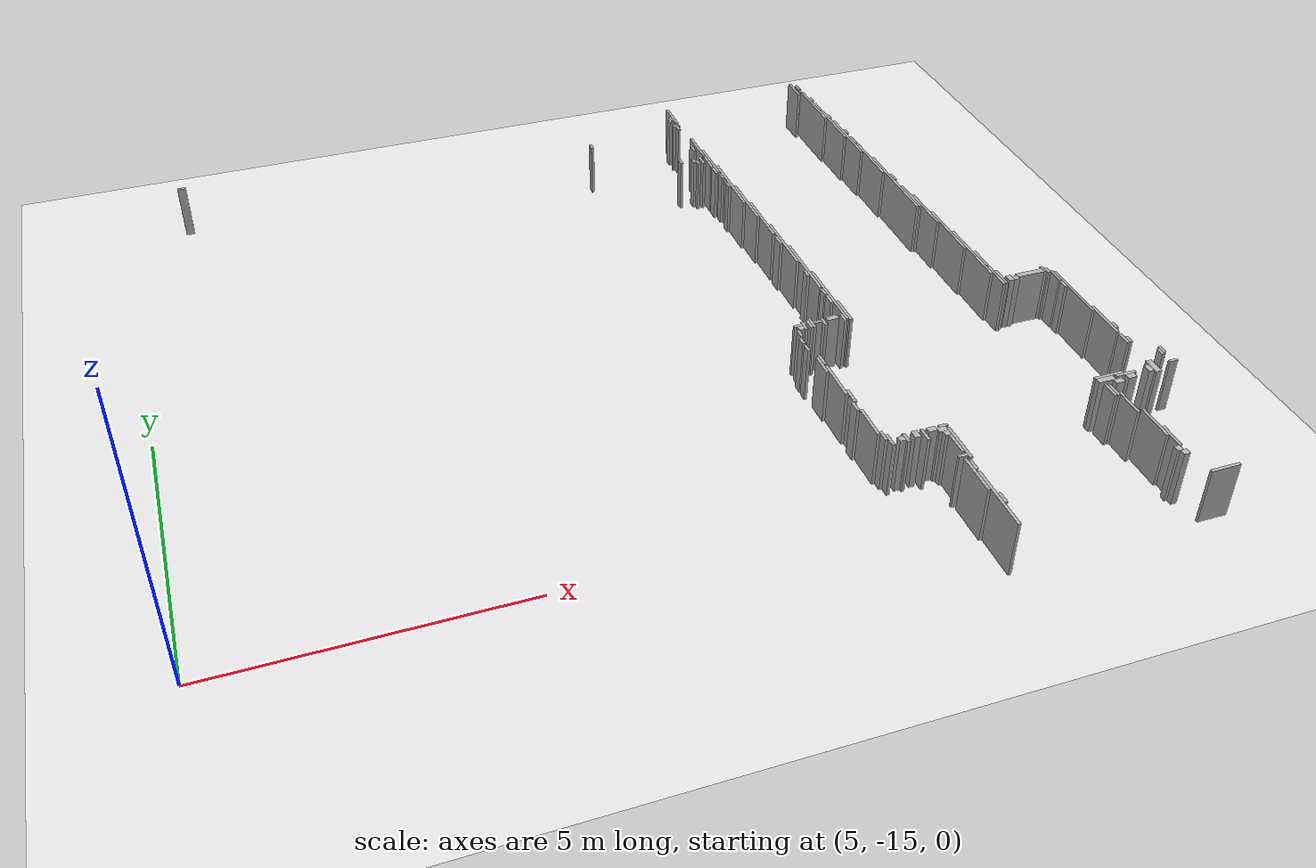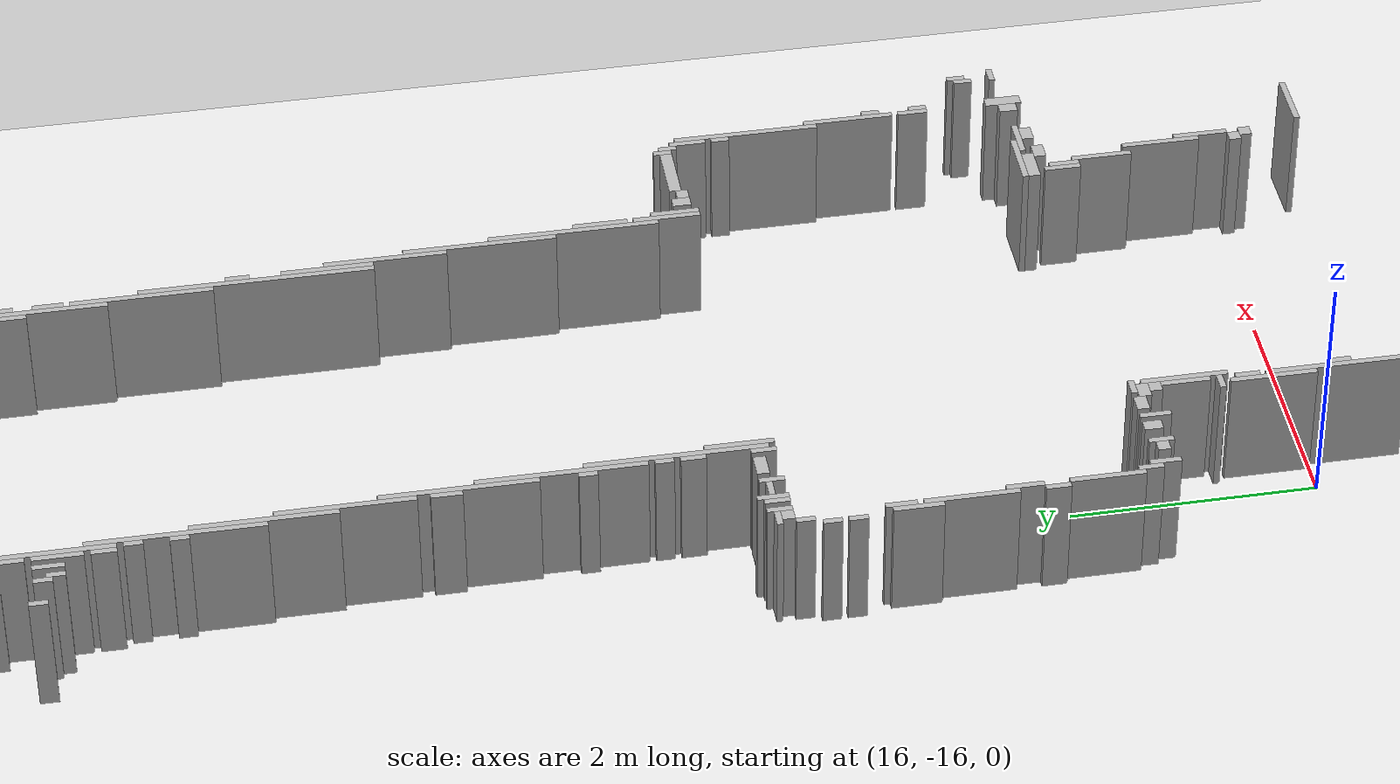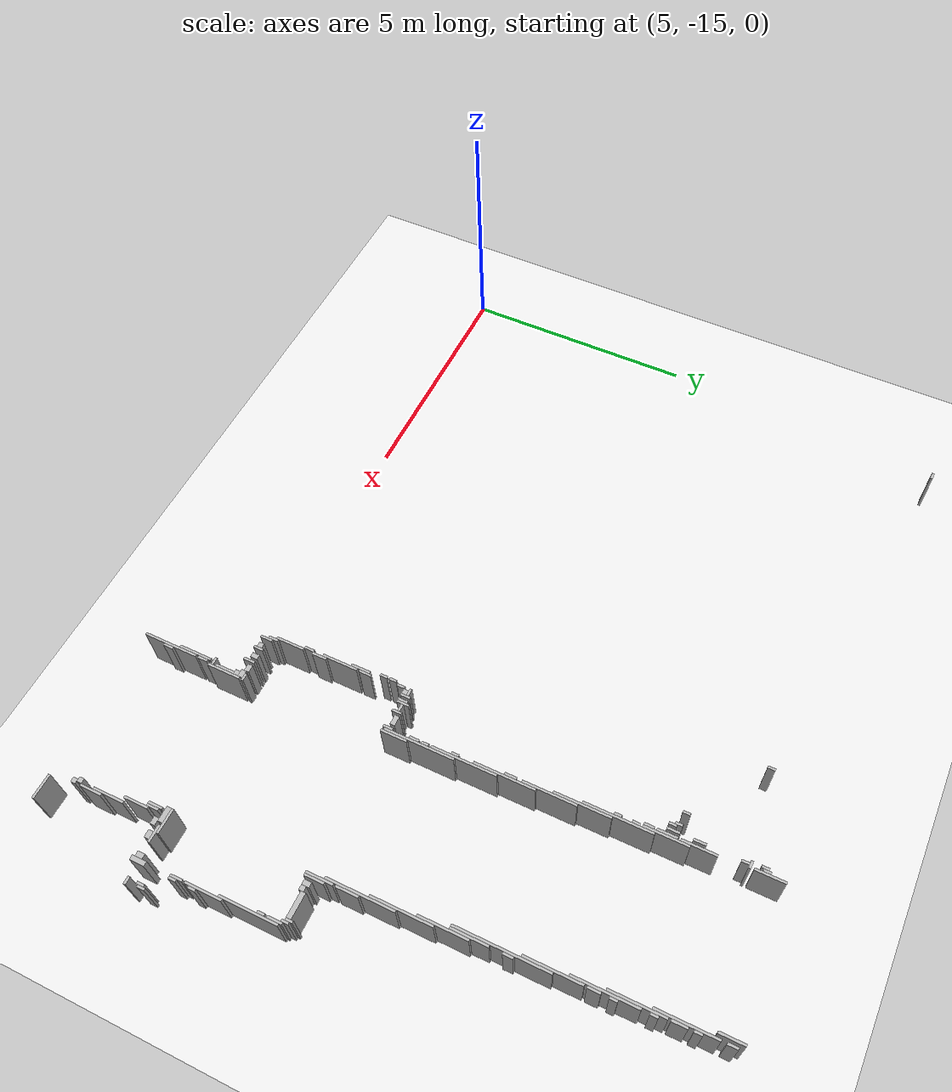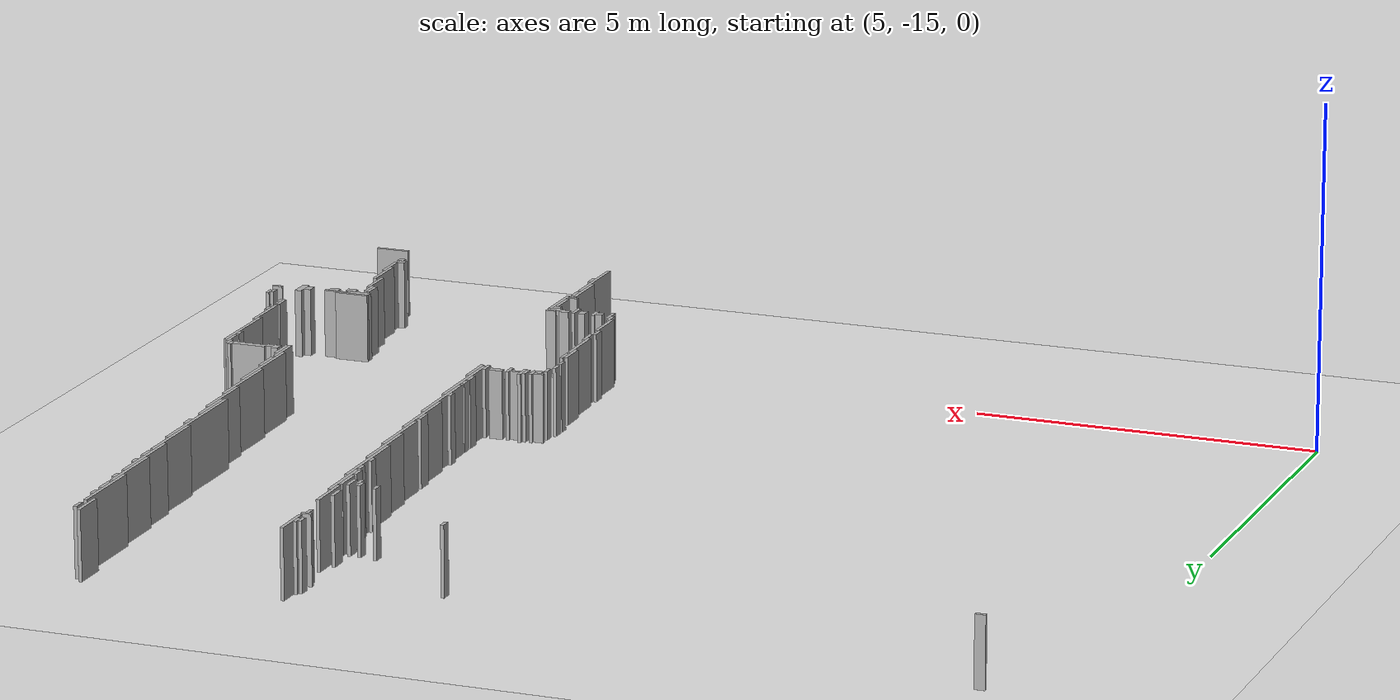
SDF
<sdf version="1.8">
 <world name="building">
  <model name="ground_plane">
   <static>true</static>
   <link name="link">
    <collision name="c"><geometry><plane><normal>0 0 1</normal><size>200 200</size></plane></geometry></collision>
    <visual name="v">
     <geometry><plane><normal>0 0 1</normal><size>200 200</size></plane></geometry>
     <material><ambient>0.9 0.9 0.9 1</ambient><diffuse>0.9 0.9 0.9 1</diffuse></material>
    </visual>
   </link>
  </model>
  <model name="walls">
   <static>true</static>
   <link name="wall_459">
    <pose>18.525 -3.900 0.500 0 0 0</pose>
    <collision name="c"><geometry><box><size>0.050 0.500 1.000</size></box></geometry></collision>
    <visual name="v">
     <geometry><box><size>0.050 0.500 1.000</size></box></geometry>
     <material><ambient>0.6 0.6 0.6 1</ambient><diffuse>0.7 0.7 0.7 1</diffuse></material>
    </visual>
   </link>
   <link name="wall_460">
    <pose>18.625 -3.850 0.500 0 0 0</pose>
    <collision name="c"><geometry><box><size>0.050 0.200 1.000</size></box></geometry></collision>
    <visual name="v">
     <geometry><box><size>0.050 0.200 1.000</size></box></geometry>
     <material><ambient>0.6 0.6 0.6 1</ambient><diffuse>0.7 0.7 0.7 1</diffuse></material>
    </visual>
   </link>
   <link name="wall_461">
    <pose>6.125 -3.875 0.500 0 0 0</pose>
    <collision name="c"><geometry><box><size>0.150 0.050 1.000</size></box></geometry></collision>
    <visual name="v">
     <geometry><box><size>0.150 0.050 1.000</size></box></geometry>
     <material><ambient>0.6 0.6 0.6 1</ambient><diffuse>0.7 0.7 0.7 1</diffuse></material>
    </visual>
   </link>
   <link name="wall_462">
    <pose>15.725 -4.200 0.500 0 0 0</pose>
    <collision name="c"><geometry><box><size>0.050 0.600 1.000</size></box></geometry></collision>
    <visual name="v">
     <geometry><box><size>0.050 0.600 1.000</size></box></geometry>
     <material><ambient>0.6 0.6 0.6 1</ambient><diffuse>0.7 0.7 0.7 1</diffuse></material>
    </visual>
   </link>
   <link name="wall_465">
    <pose>18.625 -4.650 0.500 0 0 0</pose>
    <collision name="c"><geometry><box><size>0.050 1.200 1.000</size></box></geometry></collision>
    <visual name="v">
     <geometry><box><size>0.050 1.200 1.000</size></box></geometry>
     <material><ambient>0.6 0.6 0.6 1</ambient><diffuse>0.7 0.7 0.7 1</diffuse></material>
    </visual>
   </link>
   <link name="wall_466">
    <pose>15.675 -4.275 0.500 0 0 0</pose>
    <collision name="c"><geometry><box><size>0.050 0.150 1.000</size></box></geometry></collision>
    <visual name="v">
     <geometry><box><size>0.050 0.150 1.000</size></box></geometry>
     <material><ambient>0.6 0.6 0.6 1</ambient><diffuse>0.7 0.7 0.7 1</diffuse></material>
    </visual>
   </link>
   <link name="wall_467">
    <pose>15.625 -4.325 0.500 0 0 0</pose>
    <collision name="c"><geometry><box><size>0.050 0.150 1.000</size></box></geometry></collision>
    <visual name="v">
     <geometry><box><size>0.050 0.150 1.000</size></box></geometry>
     <material><ambient>0.6 0.6 0.6 1</ambient><diffuse>0.7 0.7 0.7 1</diffuse></material>
    </visual>
   </link>
   <link name="wall_468">
    <pose>18.675 -4.425 0.500 0 0 0</pose>
    <collision name="c"><geometry><box><size>0.050 0.150 1.000</size></box></geometry></collision>
    <visual name="v">
     <geometry><box><size>0.050 0.150 1.000</size></box></geometry>
     <material><ambient>0.6 0.6 0.6 1</ambient><diffuse>0.7 0.7 0.7 1</diffuse></material>
    </visual>
   </link>
   <link name="wall_472">
    <pose>15.675 -4.575 0.500 0 0 0</pose>
    <collision name="c"><geometry><box><size>0.150 0.050 1.000</size></box></geometry></collision>
    <visual name="v">
     <geometry><box><size>0.150 0.050 1.000</size></box></geometry>
     <material><ambient>0.6 0.6 0.6 1</ambient><diffuse>0.7 0.7 0.7 1</diffuse></material>
    </visual>
   </link>
   <link name="wall_473">
    <pose>15.675 -4.675 0.500 0 0 0</pose>
    <collision name="c"><geometry><box><size>0.050 0.150 1.000</size></box></geometry></collision>
    <visual name="v">
     <geometry><box><size>0.050 0.150 1.000</size></box></geometry>
     <material><ambient>0.6 0.6 0.6 1</ambient><diffuse>0.7 0.7 0.7 1</diffuse></material>
    </visual>
   </link>
   <link name="wall_474">
    <pose>18.675 -4.750 0.500 0 0 0</pose>
    <collision name="c"><geometry><box><size>0.050 0.300 1.000</size></box></geometry></collision>
    <visual name="v">
     <geometry><box><size>0.050 0.300 1.000</size></box></geometry>
     <material><ambient>0.6 0.6 0.6 1</ambient><diffuse>0.7 0.7 0.7 1</diffuse></material>
    </visual>
   </link>
   <link name="wall_477">
    <pose>13.825 -4.825 0.500 0 0 0</pose>
    <collision name="c"><geometry><box><size>0.050 0.150 1.000</size></box></geometry></collision>
    <visual name="v">
     <geometry><box><size>0.050 0.150 1.000</size></box></geometry>
     <material><ambient>0.6 0.6 0.6 1</ambient><diffuse>0.7 0.7 0.7 1</diffuse></material>
    </visual>
   </link>
   <link name="wall_482">
    <pose>18.675 -5.500 0.500 0 0 0</pose>
    <collision name="c"><geometry><box><size>0.050 1.100 1.000</size></box></geometry></collision>
    <visual name="v">
     <geometry><box><size>0.050 1.100 1.000</size></box></geometry>
     <material><ambient>0.6 0.6 0.6 1</ambient><diffuse>0.7 0.7 0.7 1</diffuse></material>
    </visual>
   </link>
   <link name="wall_484">
    <pose>18.725 -5.175 0.500 0 0 0</pose>
    <collision name="c"><geometry><box><size>0.050 0.150 1.000</size></box></geometry></collision>
    <visual name="v">
     <geometry><box><size>0.050 0.150 1.000</size></box></geometry>
     <material><ambient>0.6 0.6 0.6 1</ambient><diffuse>0.7 0.7 0.7 1</diffuse></material>
    </visual>
   </link>
   <link name="wall_486">
    <pose>15.775 -5.500 0.500 0 0 0</pose>
    <collision name="c"><geometry><box><size>0.050 0.700 1.000</size></box></geometry></collision>
    <visual name="v">
     <geometry><box><size>0.050 0.700 1.000</size></box></geometry>
     <material><ambient>0.6 0.6 0.6 1</ambient><diffuse>0.7 0.7 0.7 1</diffuse></material>
    </visual>
   </link>
   <link name="wall_488">
    <pose>15.675 -5.525 0.500 0 0 0</pose>
    <collision name="c"><geometry><box><size>0.050 0.250 1.000</size></box></geometry></collision>
    <visual name="v">
     <geometry><box><size>0.050 0.250 1.000</size></box></geometry>
     <material><ambient>0.6 0.6 0.6 1</ambient><diffuse>0.7 0.7 0.7 1</diffuse></material>
    </visual>
   </link>
   <link name="wall_489">
    <pose>18.725 -6.050 0.500 0 0 0</pose>
    <collision name="c"><geometry><box><size>0.050 1.300 1.000</size></box></geometry></collision>
    <visual name="v">
     <geometry><box><size>0.050 1.300 1.000</size></box></geometry>
     <material><ambient>0.6 0.6 0.6 1</ambient><diffuse>0.7 0.7 0.7 1</diffuse></material>
    </visual>
   </link>
   <link name="wall_491">
    <pose>15.825 -6.100 0.500 0 0 0</pose>
    <collision name="c"><geometry><box><size>0.050 0.900 1.000</size></box></geometry></collision>
    <visual name="v">
     <geometry><box><size>0.050 0.900 1.000</size></box></geometry>
     <material><ambient>0.6 0.6 0.6 1</ambient><diffuse>0.7 0.7 0.7 1</diffuse></material>
    </visual>
   </link>
   <link name="wall_493">
    <pose>18.775 -5.875 0.500 0 0 0</pose>
    <collision name="c"><geometry><box><size>0.050 0.150 1.000</size></box></geometry></collision>
    <visual name="v">
     <geometry><box><size>0.050 0.150 1.000</size></box></geometry>
     <material><ambient>0.6 0.6 0.6 1</ambient><diffuse>0.7 0.7 0.7 1</diffuse></material>
    </visual>
   </link>
   <link name="wall_495">
    <pose>15.275 -5.925 0.500 0 0 0</pose>
    <collision name="c"><geometry><box><size>0.050 0.150 1.000</size></box></geometry></collision>
    <visual name="v">
     <geometry><box><size>0.050 0.150 1.000</size></box></geometry>
     <material><ambient>0.6 0.6 0.6 1</ambient><diffuse>0.7 0.7 0.7 1</diffuse></material>
    </visual>
   </link>
   <link name="wall_496">
    <pose>15.525 -5.975 0.500 0 0 0</pose>
    <collision name="c"><geometry><box><size>0.050 0.150 1.000</size></box></geometry></collision>
    <visual name="v">
     <geometry><box><size>0.050 0.150 1.000</size></box></geometry>
     <material><ambient>0.6 0.6 0.6 1</ambient><diffuse>0.7 0.7 0.7 1</diffuse></material>
    </visual>
   </link>
   <link name="wall_497">
    <pose>15.675 -6.025 0.500 0 0 0</pose>
    <collision name="c"><geometry><box><size>0.050 0.250 1.000</size></box></geometry></collision>
    <visual name="v">
     <geometry><box><size>0.050 0.250 1.000</size></box></geometry>
     <material><ambient>0.6 0.6 0.6 1</ambient><diffuse>0.7 0.7 0.7 1</diffuse></material>
    </visual>
   </link>
   <link name="wall_498">
    <pose>15.775 -6.100 0.500 0 0 0</pose>
    <collision name="c"><geometry><box><size>0.050 0.400 1.000</size></box></geometry></collision>
    <visual name="v">
     <geometry><box><size>0.050 0.400 1.000</size></box></geometry>
     <material><ambient>0.6 0.6 0.6 1</ambient><diffuse>0.7 0.7 0.7 1</diffuse></material>
    </visual>
   </link>
   <link name="wall_499">
    <pose>15.575 -6.075 0.500 0 0 0</pose>
    <collision name="c"><geometry><box><size>0.050 0.150 1.000</size></box></geometry></collision>
    <visual name="v">
     <geometry><box><size>0.050 0.150 1.000</size></box></geometry>
     <material><ambient>0.6 0.6 0.6 1</ambient><diffuse>0.7 0.7 0.7 1</diffuse></material>
    </visual>
   </link>
   <link name="wall_500">
    <pose>18.775 -6.225 0.500 0 0 0</pose>
    <collision name="c"><geometry><box><size>0.050 0.250 1.000</size></box></geometry></collision>
    <visual name="v">
     <geometry><box><size>0.050 0.250 1.000</size></box></geometry>
     <material><ambient>0.6 0.6 0.6 1</ambient><diffuse>0.7 0.7 0.7 1</diffuse></material>
    </visual>
   </link>
   <link name="wall_501">
    <pose>15.875 -7.000 0.500 0 0 0</pose>
    <collision name="c"><geometry><box><size>0.050 1.400 1.000</size></box></geometry></collision>
    <visual name="v">
     <geometry><box><size>0.050 1.400 1.000</size></box></geometry>
     <material><ambient>0.6 0.6 0.6 1</ambient><diffuse>0.7 0.7 0.7 1</diffuse></material>
    </visual>
   </link>
   <link name="wall_502">
    <pose>15.775 -6.450 0.500 0 0 0</pose>
    <collision name="c"><geometry><box><size>0.050 0.200 1.000</size></box></geometry></collision>
    <visual name="v">
     <geometry><box><size>0.050 0.200 1.000</size></box></geometry>
     <material><ambient>0.6 0.6 0.6 1</ambient><diffuse>0.7 0.7 0.7 1</diffuse></material>
    </visual>
   </link>
   <link name="wall_503">
    <pose>18.775 -6.975 0.500 0 0 0</pose>
    <collision name="c"><geometry><box><size>0.050 1.150 1.000</size></box></geometry></collision>
    <visual name="v">
     <geometry><box><size>0.050 1.150 1.000</size></box></geometry>
     <material><ambient>0.6 0.6 0.6 1</ambient><diffuse>0.7 0.7 0.7 1</diffuse></material>
    </visual>
   </link>
   <link name="wall_505">
    <pose>15.825 -6.675 0.500 0 0 0</pose>
    <collision name="c"><geometry><box><size>0.050 0.150 1.000</size></box></geometry></collision>
    <visual name="v">
     <geometry><box><size>0.050 0.150 1.000</size></box></geometry>
     <material><ambient>0.6 0.6 0.6 1</ambient><diffuse>0.7 0.7 0.7 1</diffuse></material>
    </visual>
   </link>
   <link name="wall_508">
    <pose>15.825 -7.025 0.500 0 0 0</pose>
    <collision name="c"><geometry><box><size>0.050 0.150 1.000</size></box></geometry></collision>
    <visual name="v">
     <geometry><box><size>0.050 0.150 1.000</size></box></geometry>
     <material><ambient>0.6 0.6 0.6 1</ambient><diffuse>0.7 0.7 0.7 1</diffuse></material>
    </visual>
   </link>
   <link name="wall_509">
    <pose>18.825 -7.900 0.500 0 0 0</pose>
    <collision name="c"><geometry><box><size>0.050 1.900 1.000</size></box></geometry></collision>
    <visual name="v">
     <geometry><box><size>0.050 1.900 1.000</size></box></geometry>
     <material><ambient>0.6 0.6 0.6 1</ambient><diffuse>0.7 0.7 0.7 1</diffuse></material>
    </visual>
   </link>
   <link name="wall_510">
    <pose>15.925 -7.675 0.500 0 0 0</pose>
    <collision name="c"><geometry><box><size>0.050 1.150 1.000</size></box></geometry></collision>
    <visual name="v">
     <geometry><box><size>0.050 1.150 1.000</size></box></geometry>
     <material><ambient>0.6 0.6 0.6 1</ambient><diffuse>0.7 0.7 0.7 1</diffuse></material>
    </visual>
   </link>
   <link name="wall_512">
    <pose>18.875 -7.750 0.500 0 0 0</pose>
    <collision name="c"><geometry><box><size>0.050 0.200 1.000</size></box></geometry></collision>
    <visual name="v">
     <geometry><box><size>0.050 0.200 1.000</size></box></geometry>
     <material><ambient>0.6 0.6 0.6 1</ambient><diffuse>0.7 0.7 0.7 1</diffuse></material>
    </visual>
   </link>
   <link name="wall_513">
    <pose>15.975 -8.300 0.500 0 0 0</pose>
    <collision name="c"><geometry><box><size>0.050 1.100 1.000</size></box></geometry></collision>
    <visual name="v">
     <geometry><box><size>0.050 1.100 1.000</size></box></geometry>
     <material><ambient>0.6 0.6 0.6 1</ambient><diffuse>0.7 0.7 0.7 1</diffuse></material>
    </visual>
   </link>
   <link name="wall_514">
    <pose>18.875 -8.475 0.500 0 0 0</pose>
    <collision name="c"><geometry><box><size>0.050 0.750 1.000</size></box></geometry></collision>
    <visual name="v">
     <geometry><box><size>0.050 0.750 1.000</size></box></geometry>
     <material><ambient>0.6 0.6 0.6 1</ambient><diffuse>0.7 0.7 0.7 1</diffuse></material>
    </visual>
   </link>
   <link name="wall_517">
    <pose>18.925 -8.950 0.500 0 0 0</pose>
    <collision name="c"><geometry><box><size>0.050 1.000 1.000</size></box></geometry></collision>
    <visual name="v">
     <geometry><box><size>0.050 1.000 1.000</size></box></geometry>
     <material><ambient>0.6 0.6 0.6 1</ambient><diffuse>0.7 0.7 0.7 1</diffuse></material>
    </visual>
   </link>
   <link name="wall_518">
    <pose>16.025 -9.175 0.500 0 0 0</pose>
    <collision name="c"><geometry><box><size>0.050 1.250 1.000</size></box></geometry></collision>
    <visual name="v">
     <geometry><box><size>0.050 1.250 1.000</size></box></geometry>
     <material><ambient>0.6 0.6 0.6 1</ambient><diffuse>0.7 0.7 0.7 1</diffuse></material>
    </visual>
   </link>
   <link name="wall_522">
    <pose>15.975 -9.075 0.500 0 0 0</pose>
    <collision name="c"><geometry><box><size>0.050 0.250 1.000</size></box></geometry></collision>
    <visual name="v">
     <geometry><box><size>0.050 0.250 1.000</size></box></geometry>
     <material><ambient>0.6 0.6 0.6 1</ambient><diffuse>0.7 0.7 0.7 1</diffuse></material>
    </visual>
   </link>
   <link name="wall_523">
    <pose>18.975 -9.725 0.500 0 0 0</pose>
    <collision name="c"><geometry><box><size>0.050 1.250 1.000</size></box></geometry></collision>
    <visual name="v">
     <geometry><box><size>0.050 1.250 1.000</size></box></geometry>
     <material><ambient>0.6 0.6 0.6 1</ambient><diffuse>0.7 0.7 0.7 1</diffuse></material>
    </visual>
   </link>
   <link name="wall_525">
    <pose>16.075 -9.975 0.500 0 0 0</pose>
    <collision name="c"><geometry><box><size>0.050 1.350 1.000</size></box></geometry></collision>
    <visual name="v">
     <geometry><box><size>0.050 1.350 1.000</size></box></geometry>
     <material><ambient>0.6 0.6 0.6 1</ambient><diffuse>0.7 0.7 0.7 1</diffuse></material>
    </visual>
   </link>
   <link name="wall_528">
    <pose>19.025 -10.500 0.500 0 0 0</pose>
    <collision name="c"><geometry><box><size>0.050 1.400 1.000</size></box></geometry></collision>
    <visual name="v">
     <geometry><box><size>0.050 1.400 1.000</size></box></geometry>
     <material><ambient>0.6 0.6 0.6 1</ambient><diffuse>0.7 0.7 0.7 1</diffuse></material>
    </visual>
   </link>
   <link name="wall_537">
    <pose>16.025 -10.175 0.500 0 0 0</pose>
    <collision name="c"><geometry><box><size>0.050 0.150 1.000</size></box></geometry></collision>
    <visual name="v">
     <geometry><box><size>0.050 0.150 1.000</size></box></geometry>
     <material><ambient>0.6 0.6 0.6 1</ambient><diffuse>0.7 0.7 0.7 1</diffuse></material>
    </visual>
   </link>
   <link name="wall_538">
    <pose>16.125 -10.875 0.500 0 0 0</pose>
    <collision name="c"><geometry><box><size>0.050 1.450 1.000</size></box></geometry></collision>
    <visual name="v">
     <geometry><box><size>0.050 1.450 1.000</size></box></geometry>
     <material><ambient>0.6 0.6 0.6 1</ambient><diffuse>0.7 0.7 0.7 1</diffuse></material>
    </visual>
   </link>
   <link name="wall_539">
    <pose>19.075 -10.725 0.500 0 0 0</pose>
    <collision name="c"><geometry><box><size>0.050 0.450 1.000</size></box></geometry></collision>
    <visual name="v">
     <geometry><box><size>0.050 0.450 1.000</size></box></geometry>
     <material><ambient>0.6 0.6 0.6 1</ambient><diffuse>0.7 0.7 0.7 1</diffuse></material>
    </visual>
   </link>
   <link name="wall_541">
    <pose>16.075 -10.775 0.500 0 0 0</pose>
    <collision name="c"><geometry><box><size>0.050 0.150 1.000</size></box></geometry></collision>
    <visual name="v">
     <geometry><box><size>0.050 0.150 1.000</size></box></geometry>
     <material><ambient>0.6 0.6 0.6 1</ambient><diffuse>0.7 0.7 0.7 1</diffuse></material>
    </visual>
   </link>
   <link name="wall_543">
    <pose>16.075 -11.000 0.500 0 0 0</pose>
    <collision name="c"><geometry><box><size>0.050 0.200 1.000</size></box></geometry></collision>
    <visual name="v">
     <geometry><box><size>0.050 0.200 1.000</size></box></geometry>
     <material><ambient>0.6 0.6 0.6 1</ambient><diffuse>0.7 0.7 0.7 1</diffuse></material>
    </visual>
   </link>
   <link name="wall_545">
    <pose>19.075 -11.275 0.500 0 0 0</pose>
    <collision name="c"><geometry><box><size>0.050 0.550 1.000</size></box></geometry></collision>
    <visual name="v">
     <geometry><box><size>0.050 0.550 1.000</size></box></geometry>
     <material><ambient>0.6 0.6 0.6 1</ambient><diffuse>0.7 0.7 0.7 1</diffuse></material>
    </visual>
   </link>
   <link name="wall_546">
    <pose>16.175 -11.375 0.500 0 0 0</pose>
    <collision name="c"><geometry><box><size>0.050 0.550 1.000</size></box></geometry></collision>
    <visual name="v">
     <geometry><box><size>0.050 0.550 1.000</size></box></geometry>
     <material><ambient>0.6 0.6 0.6 1</ambient><diffuse>0.7 0.7 0.7 1</diffuse></material>
    </visual>
   </link>
   <link name="wall_547">
    <pose>19.125 -11.350 0.500 0 0 0</pose>
    <collision name="c"><geometry><box><size>0.050 0.400 1.000</size></box></geometry></collision>
    <visual name="v">
     <geometry><box><size>0.050 0.400 1.000</size></box></geometry>
     <material><ambient>0.6 0.6 0.6 1</ambient><diffuse>0.7 0.7 0.7 1</diffuse></material>
    </visual>
   </link>
   <link name="wall_550">
    <pose>19.925 -11.375 0.500 0 0 0</pose>
    <collision name="c"><geometry><box><size>0.050 0.150 1.000</size></box></geometry></collision>
    <visual name="v">
     <geometry><box><size>0.050 0.150 1.000</size></box></geometry>
     <material><ambient>0.6 0.6 0.6 1</ambient><diffuse>0.7 0.7 0.7 1</diffuse></material>
    </visual>
   </link>
   <link name="wall_551">
    <pose>19.250 -11.425 0.500 0 0 0</pose>
    <collision name="c"><geometry><box><size>0.100 0.150 1.000</size></box></geometry></collision>
    <visual name="v">
     <geometry><box><size>0.100 0.150 1.000</size></box></geometry>
     <material><ambient>0.6 0.6 0.6 1</ambient><diffuse>0.7 0.7 0.7 1</diffuse></material>
    </visual>
   </link>
   <link name="wall_552">
    <pose>19.650 -11.400 0.500 0 0 0</pose>
    <collision name="c"><geometry><box><size>0.500 0.100 1.000</size></box></geometry></collision>
    <visual name="v">
     <geometry><box><size>0.500 0.100 1.000</size></box></geometry>
     <material><ambient>0.6 0.6 0.6 1</ambient><diffuse>0.7 0.7 0.7 1</diffuse></material>
    </visual>
   </link>
   <link name="wall_553">
    <pose>19.975 -11.425 0.500 0 0 0</pose>
    <collision name="c"><geometry><box><size>0.050 0.150 1.000</size></box></geometry></collision>
    <visual name="v">
     <geometry><box><size>0.050 0.150 1.000</size></box></geometry>
     <material><ambient>0.6 0.6 0.6 1</ambient><diffuse>0.7 0.7 0.7 1</diffuse></material>
    </visual>
   </link>
   <link name="wall_555">
    <pose>15.525 -11.525 0.500 0 0 0</pose>
    <collision name="c"><geometry><box><size>0.050 0.250 1.000</size></box></geometry></collision>
    <visual name="v">
     <geometry><box><size>0.050 0.250 1.000</size></box></geometry>
     <material><ambient>0.6 0.6 0.6 1</ambient><diffuse>0.7 0.7 0.7 1</diffuse></material>
    </visual>
   </link>
   <link name="wall_556">
    <pose>19.350 -11.450 0.500 0 0 0</pose>
    <collision name="c"><geometry><box><size>0.100 0.100 1.000</size></box></geometry></collision>
    <visual name="v">
     <geometry><box><size>0.100 0.100 1.000</size></box></geometry>
     <material><ambient>0.6 0.6 0.6 1</ambient><diffuse>0.7 0.7 0.7 1</diffuse></material>
    </visual>
   </link>
   <link name="wall_558">
    <pose>15.375 -11.550 0.500 0 0 0</pose>
    <collision name="c"><geometry><box><size>0.050 0.200 1.000</size></box></geometry></collision>
    <visual name="v">
     <geometry><box><size>0.050 0.200 1.000</size></box></geometry>
     <material><ambient>0.6 0.6 0.6 1</ambient><diffuse>0.7 0.7 0.7 1</diffuse></material>
    </visual>
   </link>
   <link name="wall_559">
    <pose>15.475 -11.550 0.500 0 0 0</pose>
    <collision name="c"><geometry><box><size>0.050 0.200 1.000</size></box></geometry></collision>
    <visual name="v">
     <geometry><box><size>0.050 0.200 1.000</size></box></geometry>
     <material><ambient>0.6 0.6 0.6 1</ambient><diffuse>0.7 0.7 0.7 1</diffuse></material>
    </visual>
   </link>
   <link name="wall_560">
    <pose>15.725 -11.550 0.500 0 0 0</pose>
    <collision name="c"><geometry><box><size>0.050 0.200 1.000</size></box></geometry></collision>
    <visual name="v">
     <geometry><box><size>0.050 0.200 1.000</size></box></geometry>
     <material><ambient>0.6 0.6 0.6 1</ambient><diffuse>0.7 0.7 0.7 1</diffuse></material>
    </visual>
   </link>
   <link name="wall_561">
    <pose>15.900 -11.500 0.500 0 0 0</pose>
    <collision name="c"><geometry><box><size>0.200 0.100 1.000</size></box></geometry></collision>
    <visual name="v">
     <geometry><box><size>0.200 0.100 1.000</size></box></geometry>
     <material><ambient>0.6 0.6 0.6 1</ambient><diffuse>0.7 0.7 0.7 1</diffuse></material>
    </visual>
   </link>
   <link name="wall_562">
    <pose>16.075 -11.550 0.500 0 0 0</pose>
    <collision name="c"><geometry><box><size>0.050 0.200 1.000</size></box></geometry></collision>
    <visual name="v">
     <geometry><box><size>0.050 0.200 1.000</size></box></geometry>
     <material><ambient>0.6 0.6 0.6 1</ambient><diffuse>0.7 0.7 0.7 1</diffuse></material>
    </visual>
   </link>
   <link name="wall_563">
    <pose>20.025 -11.600 0.500 0 0 0</pose>
    <collision name="c"><geometry><box><size>0.050 0.300 1.000</size></box></geometry></collision>
    <visual name="v">
     <geometry><box><size>0.050 0.300 1.000</size></box></geometry>
     <material><ambient>0.6 0.6 0.6 1</ambient><diffuse>0.7 0.7 0.7 1</diffuse></material>
    </visual>
   </link>
   <link name="wall_564">
    <pose>15.275 -11.525 0.500 0 0 0</pose>
    <collision name="c"><geometry><box><size>0.150 0.050 1.000</size></box></geometry></collision>
    <visual name="v">
     <geometry><box><size>0.150 0.050 1.000</size></box></geometry>
     <material><ambient>0.6 0.6 0.6 1</ambient><diffuse>0.7 0.7 0.7 1</diffuse></material>
    </visual>
   </link>
   <link name="wall_565">
    <pose>15.625 -11.525 0.500 0 0 0</pose>
    <collision name="c"><geometry><box><size>0.150 0.050 1.000</size></box></geometry></collision>
    <visual name="v">
     <geometry><box><size>0.150 0.050 1.000</size></box></geometry>
     <material><ambient>0.6 0.6 0.6 1</ambient><diffuse>0.7 0.7 0.7 1</diffuse></material>
    </visual>
   </link>
   <link name="wall_566">
    <pose>20.075 -12.100 0.500 0 0 0</pose>
    <collision name="c"><geometry><box><size>0.050 1.200 1.000</size></box></geometry></collision>
    <visual name="v">
     <geometry><box><size>0.050 1.200 1.000</size></box></geometry>
     <material><ambient>0.6 0.6 0.6 1</ambient><diffuse>0.7 0.7 0.7 1</diffuse></material>
    </visual>
   </link>
   <link name="wall_567">
    <pose>15.300 -11.600 0.500 0 0 0</pose>
    <collision name="c"><geometry><box><size>0.100 0.100 1.000</size></box></geometry></collision>
    <visual name="v">
     <geometry><box><size>0.100 0.100 1.000</size></box></geometry>
     <material><ambient>0.6 0.6 0.6 1</ambient><diffuse>0.7 0.7 0.7 1</diffuse></material>
    </visual>
   </link>
   <link name="wall_569">
    <pose>15.225 -11.725 0.500 0 0 0</pose>
    <collision name="c"><geometry><box><size>0.050 0.150 1.000</size></box></geometry></collision>
    <visual name="v">
     <geometry><box><size>0.050 0.150 1.000</size></box></geometry>
     <material><ambient>0.6 0.6 0.6 1</ambient><diffuse>0.7 0.7 0.7 1</diffuse></material>
    </visual>
   </link>
   <link name="wall_575">
    <pose>20.025 -11.875 0.500 0 0 0</pose>
    <collision name="c"><geometry><box><size>0.050 0.150 1.000</size></box></geometry></collision>
    <visual name="v">
     <geometry><box><size>0.050 0.150 1.000</size></box></geometry>
     <material><ambient>0.6 0.6 0.6 1</ambient><diffuse>0.7 0.7 0.7 1</diffuse></material>
    </visual>
   </link>
   <link name="wall_576">
    <pose>15.175 -11.925 0.500 0 0 0</pose>
    <collision name="c"><geometry><box><size>0.050 0.150 1.000</size></box></geometry></collision>
    <visual name="v">
     <geometry><box><size>0.050 0.150 1.000</size></box></geometry>
     <material><ambient>0.6 0.6 0.6 1</ambient><diffuse>0.7 0.7 0.7 1</diffuse></material>
    </visual>
   </link>
   <link name="wall_579">
    <pose>15.175 -12.125 0.500 0 0 0</pose>
    <collision name="c"><geometry><box><size>0.050 0.150 1.000</size></box></geometry></collision>
    <visual name="v">
     <geometry><box><size>0.050 0.150 1.000</size></box></geometry>
     <material><ambient>0.6 0.6 0.6 1</ambient><diffuse>0.7 0.7 0.7 1</diffuse></material>
    </visual>
   </link>
   <link name="wall_581">
    <pose>15.275 -12.475 0.500 0 0 0</pose>
    <collision name="c"><geometry><box><size>0.050 0.250 1.000</size></box></geometry></collision>
    <visual name="v">
     <geometry><box><size>0.050 0.250 1.000</size></box></geometry>
     <material><ambient>0.6 0.6 0.6 1</ambient><diffuse>0.7 0.7 0.7 1</diffuse></material>
    </visual>
   </link>
   <link name="wall_582">
    <pose>15.225 -12.600 0.500 0 0 0</pose>
    <collision name="c"><geometry><box><size>0.050 0.400 1.000</size></box></geometry></collision>
    <visual name="v">
     <geometry><box><size>0.050 0.400 1.000</size></box></geometry>
     <material><ambient>0.6 0.6 0.6 1</ambient><diffuse>0.7 0.7 0.7 1</diffuse></material>
    </visual>
   </link>
   <link name="wall_585">
    <pose>20.125 -12.975 0.500 0 0 0</pose>
    <collision name="c"><geometry><box><size>0.050 0.750 1.000</size></box></geometry></collision>
    <visual name="v">
     <geometry><box><size>0.050 0.750 1.000</size></box></geometry>
     <material><ambient>0.6 0.6 0.6 1</ambient><diffuse>0.7 0.7 0.7 1</diffuse></material>
    </visual>
   </link>
   <link name="wall_586">
    <pose>15.275 -13.025 0.500 0 0 0</pose>
    <collision name="c"><geometry><box><size>0.050 0.750 1.000</size></box></geometry></collision>
    <visual name="v">
     <geometry><box><size>0.050 0.750 1.000</size></box></geometry>
     <material><ambient>0.6 0.6 0.6 1</ambient><diffuse>0.7 0.7 0.7 1</diffuse></material>
    </visual>
   </link>
   <link name="wall_609">
    <pose>20.175 -13.175 0.500 0 0 0</pose>
    <collision name="c"><geometry><box><size>0.050 0.150 1.000</size></box></geometry></collision>
    <visual name="v">
     <geometry><box><size>0.050 0.150 1.000</size></box></geometry>
     <material><ambient>0.6 0.6 0.6 1</ambient><diffuse>0.7 0.7 0.7 1</diffuse></material>
    </visual>
   </link>
   <link name="wall_612">
    <pose>15.325 -13.450 0.500 0 0 0</pose>
    <collision name="c"><geometry><box><size>0.050 0.300 1.000</size></box></geometry></collision>
    <visual name="v">
     <geometry><box><size>0.050 0.300 1.000</size></box></geometry>
     <material><ambient>0.6 0.6 0.6 1</ambient><diffuse>0.7 0.7 0.7 1</diffuse></material>
    </visual>
   </link>
   <link name="wall_613">
    <pose>20.125 -13.525 0.500 0 0 0</pose>
    <collision name="c"><geometry><box><size>0.050 0.250 1.000</size></box></geometry></collision>
    <visual name="v">
     <geometry><box><size>0.050 0.250 1.000</size></box></geometry>
     <material><ambient>0.6 0.6 0.6 1</ambient><diffuse>0.7 0.7 0.7 1</diffuse></material>
    </visual>
   </link>
   <link name="wall_614">
    <pose>20.175 -13.575 0.500 0 0 0</pose>
    <collision name="c"><geometry><box><size>0.050 0.150 1.000</size></box></geometry></collision>
    <visual name="v">
     <geometry><box><size>0.050 0.150 1.000</size></box></geometry>
     <material><ambient>0.6 0.6 0.6 1</ambient><diffuse>0.7 0.7 0.7 1</diffuse></material>
    </visual>
   </link>
   <link name="wall_616">
    <pose>15.275 -13.700 0.500 0 0 0</pose>
    <collision name="c"><geometry><box><size>0.050 0.200 1.000</size></box></geometry></collision>
    <visual name="v">
     <geometry><box><size>0.050 0.200 1.000</size></box></geometry>
     <material><ambient>0.6 0.6 0.6 1</ambient><diffuse>0.7 0.7 0.7 1</diffuse></material>
    </visual>
   </link>
   <link name="wall_620">
    <pose>15.325 -14.100 0.500 0 0 0</pose>
    <collision name="c"><geometry><box><size>0.050 0.600 1.000</size></box></geometry></collision>
    <visual name="v">
     <geometry><box><size>0.050 0.600 1.000</size></box></geometry>
     <material><ambient>0.6 0.6 0.6 1</ambient><diffuse>0.7 0.7 0.7 1</diffuse></material>
    </visual>
   </link>
   <link name="wall_622">
    <pose>20.525 -13.975 0.500 0 0 0</pose>
    <collision name="c"><geometry><box><size>0.050 0.150 1.000</size></box></geometry></collision>
    <visual name="v">
     <geometry><box><size>0.050 0.150 1.000</size></box></geometry>
     <material><ambient>0.6 0.6 0.6 1</ambient><diffuse>0.7 0.7 0.7 1</diffuse></material>
    </visual>
   </link>
   <link name="wall_623">
    <pose>20.475 -14.025 0.500 0 0 0</pose>
    <collision name="c"><geometry><box><size>0.050 0.150 1.000</size></box></geometry></collision>
    <visual name="v">
     <geometry><box><size>0.050 0.150 1.000</size></box></geometry>
     <material><ambient>0.6 0.6 0.6 1</ambient><diffuse>0.7 0.7 0.7 1</diffuse></material>
    </visual>
   </link>
   <link name="wall_624">
    <pose>20.150 -14.300 0.500 0 0 0</pose>
    <collision name="c"><geometry><box><size>0.100 0.300 1.000</size></box></geometry></collision>
    <visual name="v">
     <geometry><box><size>0.100 0.300 1.000</size></box></geometry>
     <material><ambient>0.6 0.6 0.6 1</ambient><diffuse>0.7 0.7 0.7 1</diffuse></material>
    </visual>
   </link>
   <link name="wall_626">
    <pose>19.350 -14.275 0.500 0 0 0</pose>
    <collision name="c"><geometry><box><size>0.500 0.050 1.000</size></box></geometry></collision>
    <visual name="v">
     <geometry><box><size>0.500 0.050 1.000</size></box></geometry>
     <material><ambient>0.6 0.6 0.6 1</ambient><diffuse>0.7 0.7 0.7 1</diffuse></material>
    </visual>
   </link>
   <link name="wall_627">
    <pose>20.050 -14.325 0.500 0 0 0</pose>
    <collision name="c"><geometry><box><size>0.100 0.150 1.000</size></box></geometry></collision>
    <visual name="v">
     <geometry><box><size>0.100 0.150 1.000</size></box></geometry>
     <material><ambient>0.6 0.6 0.6 1</ambient><diffuse>0.7 0.7 0.7 1</diffuse></material>
    </visual>
   </link>
   <link name="wall_628">
    <pose>20.525 -14.275 0.500 0 0 0</pose>
    <collision name="c"><geometry><box><size>0.150 0.050 1.000</size></box></geometry></collision>
    <visual name="v">
     <geometry><box><size>0.150 0.050 1.000</size></box></geometry>
     <material><ambient>0.6 0.6 0.6 1</ambient><diffuse>0.7 0.7 0.7 1</diffuse></material>
    </visual>
   </link>
   <link name="wall_629">
    <pose>19.250 -14.350 0.500 0 0 0</pose>
    <collision name="c"><geometry><box><size>0.300 0.100 1.000</size></box></geometry></collision>
    <visual name="v">
     <geometry><box><size>0.300 0.100 1.000</size></box></geometry>
     <material><ambient>0.6 0.6 0.6 1</ambient><diffuse>0.7 0.7 0.7 1</diffuse></material>
    </visual>
   </link>
   <link name="wall_630">
    <pose>19.625 -14.325 0.500 0 0 0</pose>
    <collision name="c"><geometry><box><size>0.350 0.050 1.000</size></box></geometry></collision>
    <visual name="v">
     <geometry><box><size>0.350 0.050 1.000</size></box></geometry>
     <material><ambient>0.6 0.6 0.6 1</ambient><diffuse>0.7 0.7 0.7 1</diffuse></material>
    </visual>
   </link>
   <link name="wall_631">
    <pose>15.375 -14.450 0.500 0 0 0</pose>
    <collision name="c"><geometry><box><size>0.050 0.200 1.000</size></box></geometry></collision>
    <visual name="v">
     <geometry><box><size>0.050 0.200 1.000</size></box></geometry>
     <material><ambient>0.6 0.6 0.6 1</ambient><diffuse>0.7 0.7 0.7 1</diffuse></material>
    </visual>
   </link>
   <link name="wall_632">
    <pose>19.675 -14.400 0.500 0 0 0</pose>
    <collision name="c"><geometry><box><size>0.150 0.100 1.000</size></box></geometry></collision>
    <visual name="v">
     <geometry><box><size>0.150 0.100 1.000</size></box></geometry>
     <material><ambient>0.6 0.6 0.6 1</ambient><diffuse>0.7 0.7 0.7 1</diffuse></material>
    </visual>
   </link>
   <link name="wall_633">
    <pose>19.425 -14.450 0.500 0 0 0</pose>
    <collision name="c"><geometry><box><size>0.150 0.100 1.000</size></box></geometry></collision>
    <visual name="v">
     <geometry><box><size>0.150 0.100 1.000</size></box></geometry>
     <material><ambient>0.6 0.6 0.6 1</ambient><diffuse>0.7 0.7 0.7 1</diffuse></material>
    </visual>
   </link>
   <link name="wall_634">
    <pose>15.425 -14.575 0.500 0 0 0</pose>
    <collision name="c"><geometry><box><size>0.050 0.250 1.000</size></box></geometry></collision>
    <visual name="v">
     <geometry><box><size>0.050 0.250 1.000</size></box></geometry>
     <material><ambient>0.6 0.6 0.6 1</ambient><diffuse>0.7 0.7 0.7 1</diffuse></material>
    </visual>
   </link>
   <link name="wall_635">
    <pose>19.175 -14.600 0.500 0 0 0</pose>
    <collision name="c"><geometry><box><size>0.050 0.300 1.000</size></box></geometry></collision>
    <visual name="v">
     <geometry><box><size>0.050 0.300 1.000</size></box></geometry>
     <material><ambient>0.6 0.6 0.6 1</ambient><diffuse>0.7 0.7 0.7 1</diffuse></material>
    </visual>
   </link>
   <link name="wall_636">
    <pose>15.675 -14.600 0.500 0 0 0</pose>
    <collision name="c"><geometry><box><size>0.050 0.200 1.000</size></box></geometry></collision>
    <visual name="v">
     <geometry><box><size>0.050 0.200 1.000</size></box></geometry>
     <material><ambient>0.6 0.6 0.6 1</ambient><diffuse>0.7 0.7 0.7 1</diffuse></material>
    </visual>
   </link>
   <link name="wall_637">
    <pose>15.850 -14.575 0.500 0 0 0</pose>
    <collision name="c"><geometry><box><size>0.100 0.150 1.000</size></box></geometry></collision>
    <visual name="v">
     <geometry><box><size>0.100 0.150 1.000</size></box></geometry>
     <material><ambient>0.6 0.6 0.6 1</ambient><diffuse>0.7 0.7 0.7 1</diffuse></material>
    </visual>
   </link>
   <link name="wall_638">
    <pose>15.975 -14.625 0.500 0 0 0</pose>
    <collision name="c"><geometry><box><size>0.050 0.250 1.000</size></box></geometry></collision>
    <visual name="v">
     <geometry><box><size>0.050 0.250 1.000</size></box></geometry>
     <material><ambient>0.6 0.6 0.6 1</ambient><diffuse>0.7 0.7 0.7 1</diffuse></material>
    </visual>
   </link>
   <link name="wall_639">
    <pose>16.125 -14.550 0.500 0 0 0</pose>
    <collision name="c"><geometry><box><size>0.150 0.100 1.000</size></box></geometry></collision>
    <visual name="v">
     <geometry><box><size>0.150 0.100 1.000</size></box></geometry>
     <material><ambient>0.6 0.6 0.6 1</ambient><diffuse>0.7 0.7 0.7 1</diffuse></material>
    </visual>
   </link>
   <link name="wall_640">
    <pose>16.325 -14.525 0.500 0 0 0</pose>
    <collision name="c"><geometry><box><size>0.150 0.050 1.000</size></box></geometry></collision>
    <visual name="v">
     <geometry><box><size>0.150 0.050 1.000</size></box></geometry>
     <material><ambient>0.6 0.6 0.6 1</ambient><diffuse>0.7 0.7 0.7 1</diffuse></material>
    </visual>
   </link>
   <link name="wall_641">
    <pose>19.225 -14.625 0.500 0 0 0</pose>
    <collision name="c"><geometry><box><size>0.050 0.250 1.000</size></box></geometry></collision>
    <visual name="v">
     <geometry><box><size>0.050 0.250 1.000</size></box></geometry>
     <material><ambient>0.6 0.6 0.6 1</ambient><diffuse>0.7 0.7 0.7 1</diffuse></material>
    </visual>
   </link>
   <link name="wall_642">
    <pose>15.600 -14.600 0.500 0 0 0</pose>
    <collision name="c"><geometry><box><size>0.100 0.100 1.000</size></box></geometry></collision>
    <visual name="v">
     <geometry><box><size>0.100 0.100 1.000</size></box></geometry>
     <material><ambient>0.6 0.6 0.6 1</ambient><diffuse>0.7 0.7 0.7 1</diffuse></material>
    </visual>
   </link>
   <link name="wall_643">
    <pose>16.275 -14.600 0.500 0 0 0</pose>
    <collision name="c"><geometry><box><size>0.150 0.100 1.000</size></box></geometry></collision>
    <visual name="v">
     <geometry><box><size>0.150 0.100 1.000</size></box></geometry>
     <material><ambient>0.6 0.6 0.6 1</ambient><diffuse>0.7 0.7 0.7 1</diffuse></material>
    </visual>
   </link>
   <link name="wall_644">
    <pose>16.375 -14.950 0.500 0 0 0</pose>
    <collision name="c"><geometry><box><size>0.050 0.700 1.000</size></box></geometry></collision>
    <visual name="v">
     <geometry><box><size>0.050 0.700 1.000</size></box></geometry>
     <material><ambient>0.6 0.6 0.6 1</ambient><diffuse>0.7 0.7 0.7 1</diffuse></material>
    </visual>
   </link>
   <link name="wall_646">
    <pose>16.300 -14.700 0.500 0 0 0</pose>
    <collision name="c"><geometry><box><size>0.100 0.100 1.000</size></box></geometry></collision>
    <visual name="v">
     <geometry><box><size>0.100 0.100 1.000</size></box></geometry>
     <material><ambient>0.6 0.6 0.6 1</ambient><diffuse>0.7 0.7 0.7 1</diffuse></material>
    </visual>
   </link>
   <link name="wall_647">
    <pose>19.275 -14.950 0.500 0 0 0</pose>
    <collision name="c"><geometry><box><size>0.050 0.500 1.000</size></box></geometry></collision>
    <visual name="v">
     <geometry><box><size>0.050 0.500 1.000</size></box></geometry>
     <material><ambient>0.6 0.6 0.6 1</ambient><diffuse>0.7 0.7 0.7 1</diffuse></material>
    </visual>
   </link>
   <link name="wall_649">
    <pose>16.325 -14.950 0.500 0 0 0</pose>
    <collision name="c"><geometry><box><size>0.050 0.400 1.000</size></box></geometry></collision>
    <visual name="v">
     <geometry><box><size>0.050 0.400 1.000</size></box></geometry>
     <material><ambient>0.6 0.6 0.6 1</ambient><diffuse>0.7 0.7 0.7 1</diffuse></material>
    </visual>
   </link>
   <link name="wall_652">
    <pose>19.375 -15.475 0.500 0 0 0</pose>
    <collision name="c"><geometry><box><size>0.050 0.650 1.000</size></box></geometry></collision>
    <visual name="v">
     <geometry><box><size>0.050 0.650 1.000</size></box></geometry>
     <material><ambient>0.6 0.6 0.6 1</ambient><diffuse>0.7 0.7 0.7 1</diffuse></material>
    </visual>
   </link>
   <link name="wall_653">
    <pose>16.275 -15.225 0.500 0 0 0</pose>
    <collision name="c"><geometry><box><size>0.150 0.050 1.000</size></box></geometry></collision>
    <visual name="v">
     <geometry><box><size>0.150 0.050 1.000</size></box></geometry>
     <material><ambient>0.6 0.6 0.6 1</ambient><diffuse>0.7 0.7 0.7 1</diffuse></material>
    </visual>
   </link>
   <link name="wall_654">
    <pose>16.275 -15.650 0.500 0 0 0</pose>
    <collision name="c"><geometry><box><size>0.050 0.700 1.000</size></box></geometry></collision>
    <visual name="v">
     <geometry><box><size>0.050 0.700 1.000</size></box></geometry>
     <material><ambient>0.6 0.6 0.6 1</ambient><diffuse>0.7 0.7 0.7 1</diffuse></material>
    </visual>
   </link>
   <link name="wall_655">
    <pose>16.325 -15.450 0.500 0 0 0</pose>
    <collision name="c"><geometry><box><size>0.050 0.200 1.000</size></box></geometry></collision>
    <visual name="v">
     <geometry><box><size>0.050 0.200 1.000</size></box></geometry>
     <material><ambient>0.6 0.6 0.6 1</ambient><diffuse>0.7 0.7 0.7 1</diffuse></material>
    </visual>
   </link>
   <link name="wall_657">
    <pose>16.325 -16.175 0.500 0 0 0</pose>
    <collision name="c"><geometry><box><size>0.050 1.150 1.000</size></box></geometry></collision>
    <visual name="v">
     <geometry><box><size>0.050 1.150 1.000</size></box></geometry>
     <material><ambient>0.6 0.6 0.6 1</ambient><diffuse>0.7 0.7 0.7 1</diffuse></material>
    </visual>
   </link>
   <link name="wall_658">
    <pose>19.425 -15.825 0.500 0 0 0</pose>
    <collision name="c"><geometry><box><size>0.050 0.450 1.000</size></box></geometry></collision>
    <visual name="v">
     <geometry><box><size>0.050 0.450 1.000</size></box></geometry>
     <material><ambient>0.6 0.6 0.6 1</ambient><diffuse>0.7 0.7 0.7 1</diffuse></material>
    </visual>
   </link>
   <link name="wall_673">
    <pose>19.350 -16.100 0.500 0 0 0</pose>
    <collision name="c"><geometry><box><size>0.100 0.100 1.000</size></box></geometry></collision>
    <visual name="v">
     <geometry><box><size>0.100 0.100 1.000</size></box></geometry>
     <material><ambient>0.6 0.6 0.6 1</ambient><diffuse>0.7 0.7 0.7 1</diffuse></material>
    </visual>
   </link>
   <link name="wall_674">
    <pose>16.375 -16.200 0.500 0 0 0</pose>
    <collision name="c"><geometry><box><size>0.050 0.200 1.000</size></box></geometry></collision>
    <visual name="v">
     <geometry><box><size>0.050 0.200 1.000</size></box></geometry>
     <material><ambient>0.6 0.6 0.6 1</ambient><diffuse>0.7 0.7 0.7 1</diffuse></material>
    </visual>
   </link>
   <link name="wall_675">
    <pose>19.400 -16.200 0.500 0 0 0</pose>
    <collision name="c"><geometry><box><size>0.100 0.100 1.000</size></box></geometry></collision>
    <visual name="v">
     <geometry><box><size>0.100 0.100 1.000</size></box></geometry>
     <material><ambient>0.6 0.6 0.6 1</ambient><diffuse>0.7 0.7 0.7 1</diffuse></material>
    </visual>
   </link>
   <link name="wall_681">
    <pose>19.750 -16.675 0.500 0 0 0</pose>
    <collision name="c"><geometry><box><size>0.500 0.050 1.000</size></box></geometry></collision>
    <visual name="v">
     <geometry><box><size>0.500 0.050 1.000</size></box></geometry>
     <material><ambient>0.6 0.6 0.6 1</ambient><diffuse>0.7 0.7 0.7 1</diffuse></material>
    </visual>
   </link>
  </model>
 </world>
</sdf>
